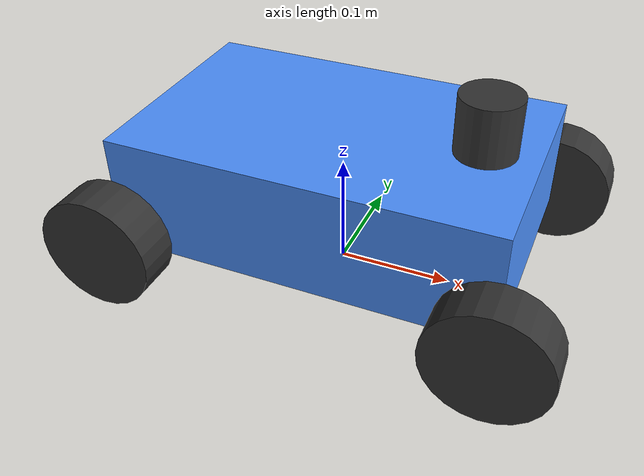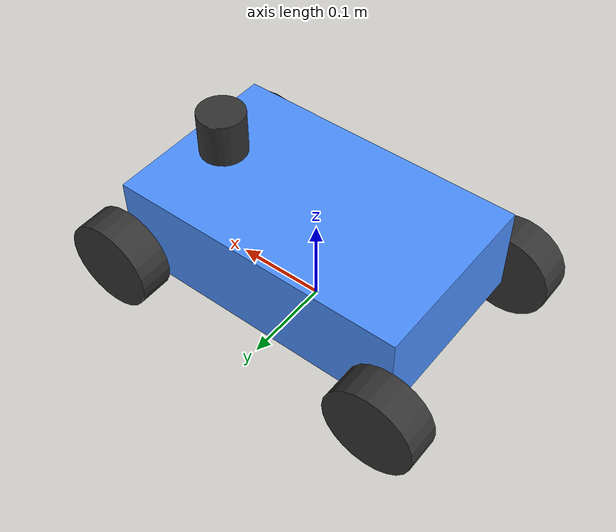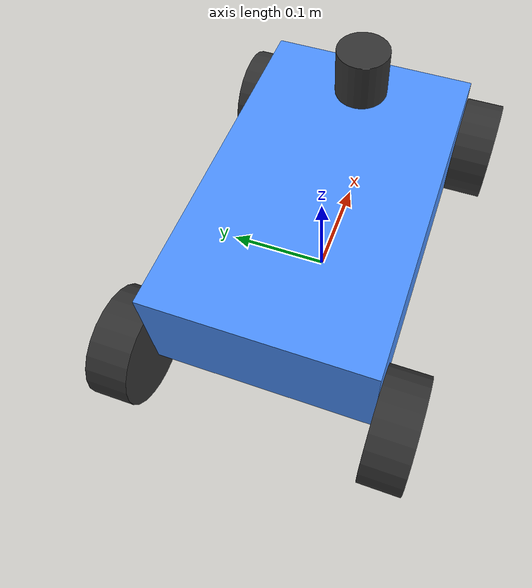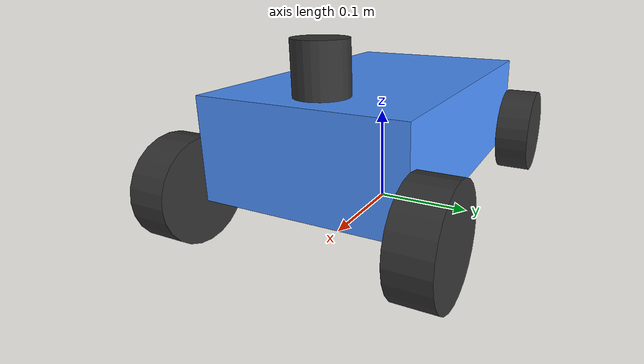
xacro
<?xml version="1.0"?>

<!-- A simple model of the racecar for rviz -->

<!--robot xmlns:xacro="http://www.ros.org/wiki/xacro" name="racecar" -->
<robot xmlns:xacro="http://ros.org/wiki/xacro" name="racecar">
  <xacro:arg name="prefix" default=""/>

  <xacro:property name="wheelbase" value="0.3302" />
  <xacro:property name="width" value="0.2032" />
  <xacro:property name="height" value="0.1" />
  <xacro:property name="ground_offset" value="0.04" />
  <xacro:property name="wheel_radius" value="0.0508" />
  <xacro:property name="wheel_length" value="0.0381" />
  <xacro:property name="laser_distance_from_base_link" value="0.12" />
  <xacro:property name="laser_height" value="0.05" />
  <xacro:property name="laser_radius" value="0.026" />

  <material name="black">
    <color rgba="0.2 0.2 0.2 1."/>
  </material>

  <material name="blue">
    <color rgba="0.3 0.57 1. 1."/>
  </material>

  <link name="base_link$(arg prefix)">
    <visual>
      <origin xyz="0 0 ${ground_offset+height/2}"/>
      <geometry>
        <box size="${wheelbase} ${width} ${height}"/>
      </geometry>
      <material name="blue"/>
    </visual>
  </link>

  <joint name="base_to_laser_model$(arg prefix)" type="fixed">
    <parent link="base_link$(arg prefix)"/>
    <child link="laser_model$(arg prefix)"/>
    <origin xyz="${laser_distance_from_base_link} 0 ${ground_offset+height+(laser_height/2)}"/>
  </joint>

  <link name="laser_model$(arg prefix)">
    <visual>
      <geometry>
        <cylinder radius="${laser_radius}" length="${laser_height}"/>
      </geometry>
      <material name="black"/>
    </visual>
  </link>

  <joint name="base_to_back_left_wheel$(arg prefix)" type="fixed">
    <parent link="base_link$(arg prefix)"/>
    <child link="back_left_wheel$(arg prefix)"/>
    <origin xyz="${-wheelbase/2} ${(wheel_length+width)/2} ${wheel_radius}"/>
  </joint>

  <link name="back_left_wheel$(arg prefix)">
    <visual>
      <geometry>
        <cylinder radius="${wheel_radius}" length="${wheel_length}"/>
      </geometry>
      <material name="black"/>
      <origin rpy="${pi/2} 0 0"/>
    </visual>
  </link>

  <joint name="base_to_back_right_wheel$(arg prefix)" type="fixed">
    <parent link="base_link$(arg prefix)"/>
    <child link="back_right_wheel$(arg prefix)"/>
    <origin xyz="${-wheelbase/2} ${-(wheel_length+width)/2} ${wheel_radius}"/>
  </joint>

  <link name="back_right_wheel$(arg prefix)">
    <visual>
      <geometry>
        <cylinder radius="${wheel_radius}" length="${wheel_length}"/>
      </geometry>
      <material name="black"/>
      <origin rpy="${pi/2} 0 0"/>
    </visual>
  </link>

  <joint name="base_to_front_left_hinge$(arg prefix)" type="fixed">
    <parent link="base_link$(arg prefix)"/>
    <child link="front_left_hinge$(arg prefix)"/>
    <origin xyz="${wheelbase/2} ${(wheel_length+width)/2} ${wheel_radius}"/>
  </joint>

  <link name="front_left_hinge$(arg prefix)"/>

  <joint name="front_left_hinge_to_wheel$(arg prefix)" type="continuous">
    <parent link="front_left_hinge$(arg prefix)"/>
    <child link="front_left_wheel$(arg prefix)"/>
  </joint>

  <link name="front_left_wheel$(arg prefix)">
    <visual>
      <geometry>
        <cylinder radius="${wheel_radius}" length="${wheel_length}"/>
      </geometry>
      <material name="black"/>
      <origin rpy="${pi/2} 0 0"/>
    </visual>
  </link>

  <joint name="base_to_front_right_hinge$(arg prefix)" type="fixed">
    <parent link="base_link$(arg prefix)"/>
    <child link="front_right_hinge$(arg prefix)"/>
    <origin xyz="${wheelbase/2} ${-(wheel_length+width)/2} ${wheel_radius}"/>
  </joint>

  <link name="front_right_hinge$(arg prefix)"/>

  <joint name="front_right_hinge_to_wheel$(arg prefix)" type="continuous">
    <parent link="front_right_hinge$(arg prefix)"/>
    <child link="front_right_wheel$(arg prefix)"/>
  </joint>

  <link name="front_right_wheel$(arg prefix)">
    <visual>
      <geometry>
        <cylinder radius="${wheel_radius}" length="${wheel_length}"/>
      </geometry>
      <material name="black"/>
      <origin rpy="${pi/2} 0 0"/>
    </visual>
  </link>

</robot>
